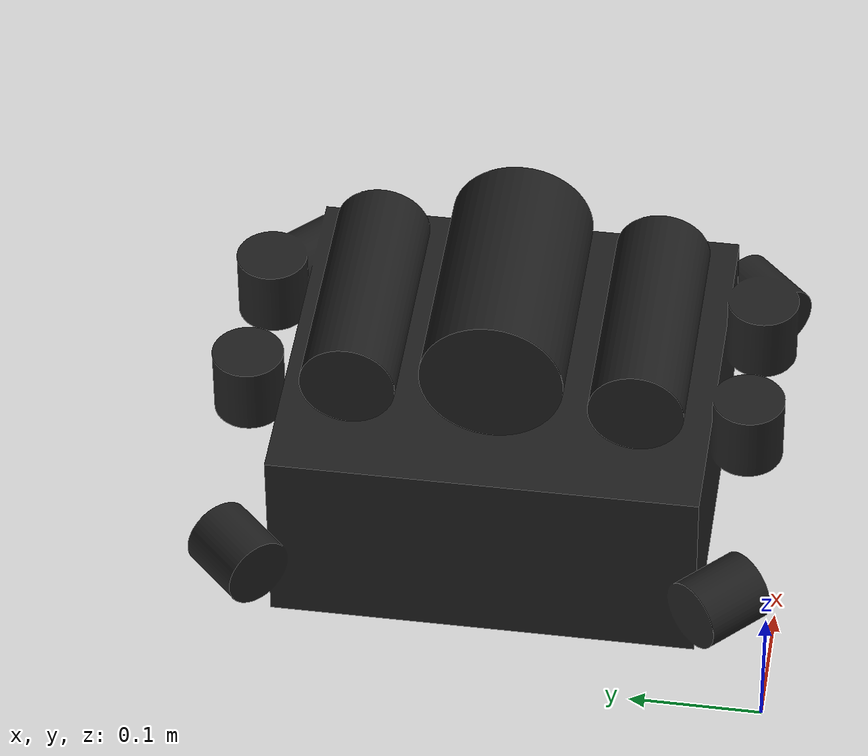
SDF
<?xml version='1.0'?>
<sdf version='1.5'>

  <model name='urab_sub'>
    <pose>0 0 0 0 0 0</pose>
    <self_collide> 0 </self_collide>
    <static> 1</static>

    <link name='chasis'>
      <pose>0 0 0 0 1.5707 0</pose>
      <visual name='chasis_vis'>
	      <pose>0 0 0 0 0 1.5707</pose>
	      <geometry>
		      <!-- Import the .sdf file from the mechanical team. This is rotated 90 degrees because Gazebo is weird -->
		<mesh>
			<uri>file://urab_sub/urab_sub.stl</uri>
			<!-- 1/15 * (0.42 meters) = the simulated sub is 0.42 meters in width -->
			<scale>0.028 0.028 0.028</scale>
		</mesh>
	</geometry>
        <material>
          <script>
            <uri>file://media/materials/scripts/gazebo.material</uri>
            <name>Gazebo/FlatBlack</name>
          </script>
        </material>
      </visual>
      <collision name='chassis_collide'>
        <geometry>
          <mesh><uri>file://urab_sub/urab_sub.stl</uri></mesh>
        </geometry>
      </collision>
    </link>

  </model>
</sdf>
